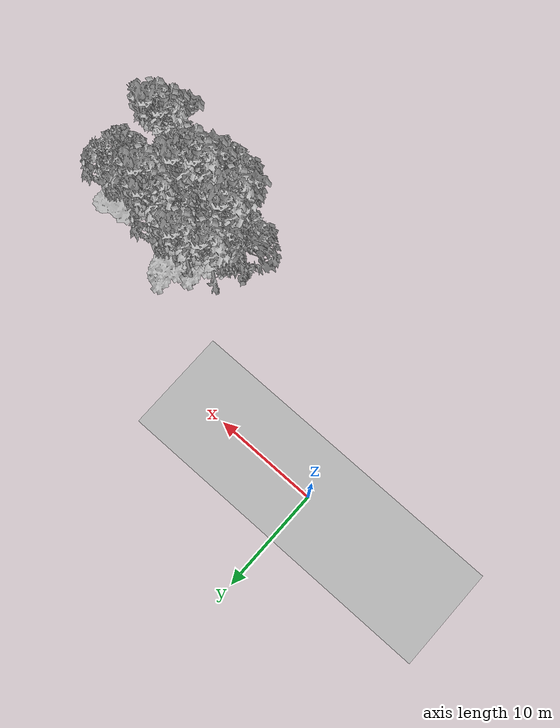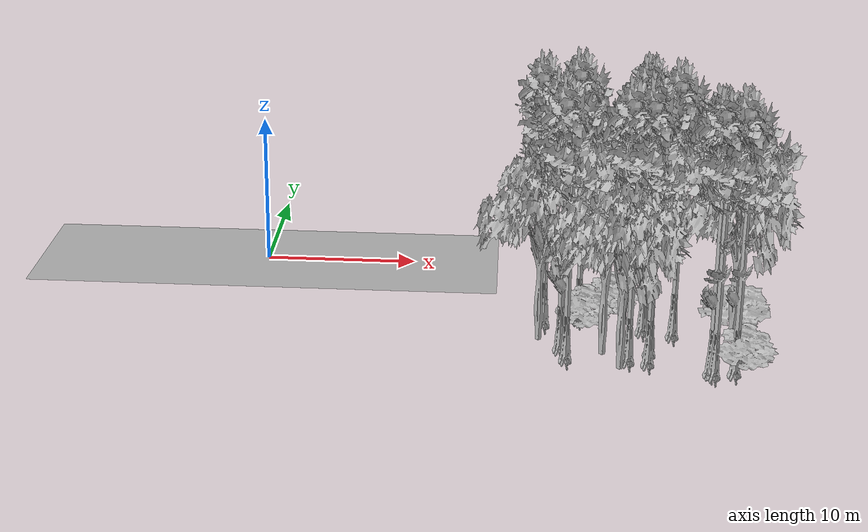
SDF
<sdf version="1.7">
 <world name="default">
  <model name="ground_plane">
   <static>1</static>
   <link name="link">
    <collision name="collision">
     <pose>-50 0 0 0 -0 0</pose>
     <geometry><plane><normal>0 0 1</normal><size>100 100</size></plane></geometry>
     <surface><contact><ode><min_depth>0.01</min_depth><max_vel>0</max_vel></ode></contact></surface>
    </collision>
    <visual name="grass">
     <cast_shadows>0</cast_shadows>
     <geometry>
      <mesh>
       <scale>0.5814285714285714 0.18142857142857144 0.1</scale>
       <uri>file://grass_plane/meshes/grass_plane.dae</uri>
      </mesh>
     </geometry>
    </visual>
   </link>
  </model>
  <model name="Tree 33">
   <static>1</static>
   <pose>23.60385576761722 -8.881119250797658 0 1.57079 -0 0</pose>
   <link name="link">
    <collision name="collision">
     <geometry><mesh><scale>3.5 5 3.5</scale><uri>model://tree_2/meshes/tree_2.obj</uri></mesh></geometry>
    </collision>
    <visual name="visual">
     <geometry><mesh><scale>3.5 5 3.5</scale><uri>model://tree_2/meshes/tree_2.obj</uri></mesh></geometry>
    </visual>
   </link>
  </model>
  <model name="Tree 36">
   <static>1</static>
   <pose>24.85289625353846 -9.240617194932316 0 1.57079 -0 0</pose>
   <link name="link">
    <collision name="collision">
     <geometry><mesh><scale>3.5 5 3.5</scale><uri>model://tree_9/meshes/tree_9.obj</uri></mesh></geometry>
    </collision>
    <visual name="visual">
     <geometry><mesh><scale>3.5 5 3.5</scale><uri>model://tree_9/meshes/tree_9.obj</uri></mesh></geometry>
    </visual>
   </link>
  </model>
  <model name="Tree 42">
   <static>1</static>
   <pose>23.378903669133507 -10.809485848581282 0 1.57079 -0 0</pose>
   <link name="link">
    <collision name="collision">
     <geometry><mesh><scale>3.5 5 3.5</scale><uri>model://tree_2/meshes/tree_2.obj</uri></mesh></geometry>
    </collision>
    <visual name="visual">
     <geometry><mesh><scale>3.5 5 3.5</scale><uri>model://tree_2/meshes/tree_2.obj</uri></mesh></geometry>
    </visual>
   </link>
  </model>
  <model name="Tree 73">
   <static>1</static>
   <pose>30.23339775664448 -9.867062529597614 0 1.57079 -0 0</pose>
   <link name="link">
    <collision name="collision">
     <geometry><mesh><scale>3.5 5 3.5</scale><uri>model://tree_2/meshes/tree_2.obj</uri></mesh></geometry>
    </collision>
    <visual name="visual">
     <geometry><mesh><scale>3.5 5 3.5</scale><uri>model://tree_2/meshes/tree_2.obj</uri></mesh></geometry>
    </visual>
   </link>
  </model>
  <model name="Tree 115">
   <static>1</static>
   <pose>24.93475936643543 -13.649419617174033 0 1.57079 -0 0</pose>
   <link name="link">
    <collision name="collision">
     <geometry><mesh><scale>3.5 5 3.5</scale><uri>model://tree_9/meshes/tree_9.obj</uri></mesh></geometry>
    </collision>
    <visual name="visual">
     <geometry><mesh><scale>3.5 5 3.5</scale><uri>model://tree_9/meshes/tree_9.obj</uri></mesh></geometry>
    </visual>
   </link>
  </model>
  <model name="Tree 121">
   <static>1</static>
   <pose>20.935622033172024 -7.823473786526552 0 1.57079 -0 0</pose>
   <link name="link">
    <collision name="collision">
     <geometry><mesh><scale>3.5 5 3.5</scale><uri>model://tree_9/meshes/tree_9.obj</uri></mesh></geometry>
    </collision>
    <visual name="visual">
     <geometry><mesh><scale>3.5 5 3.5</scale><uri>model://tree_9/meshes/tree_9.obj</uri></mesh></geometry>
    </visual>
   </link>
  </model>
  <model name="Tree 203">
   <static>1</static>
   <pose>29.97658673401817 -14.574164801837673 0 1.57079 -0 0</pose>
   <link name="link">
    <collision name="collision">
     <geometry><mesh><scale>3.5 5 3.5</scale><uri>model://tree_9/meshes/tree_9.obj</uri></mesh></geometry>
    </collision>
    <visual name="visual">
     <geometry><mesh><scale>3.5 5 3.5</scale><uri>model://tree_9/meshes/tree_9.obj</uri></mesh></geometry>
    </visual>
   </link>
  </model>
  <model name="Tree 209">
   <static>1</static>
   <pose>25.084575436205355 -8.654309527403441 0 1.57079 -0 0</pose>
   <link name="link">
    <collision name="collision">
     <geometry><mesh><scale>3.5 5 3.5</scale><uri>model://tree_9/meshes/tree_9.obj</uri></mesh></geometry>
    </collision>
    <visual name="visual">
     <geometry><mesh><scale>3.5 5 3.5</scale><uri>model://tree_9/meshes/tree_9.obj</uri></mesh></geometry>
    </visual>
   </link>
  </model>
  <model name="Tree 212">
   <static>1</static>
   <pose>30.68248000136505 -8.764935694043746 0 1.57079 -0 0</pose>
   <link name="link">
    <collision name="collision">
     <geometry><mesh><scale>3 2 3</scale><uri>model://tree_3/meshes/tree_3.obj</uri></mesh></geometry>
    </collision>
    <visual name="visual">
     <geometry><mesh><scale>3 2 3</scale><uri>model://tree_3/meshes/tree_3.obj</uri></mesh></geometry>
    </visual>
   </link>
  </model>
  <model name="Tree 214">
   <static>1</static>
   <pose>26.702363418403536 -9.742141756353123 0 1.57079 -0 0</pose>
   <link name="link">
    <collision name="collision">
     <geometry><mesh><scale>3.5 5 3.5</scale><uri>model://tree_9/meshes/tree_9.obj</uri></mesh></geometry>
    </collision>
    <visual name="visual">
     <geometry><mesh><scale>3.5 5 3.5</scale><uri>model://tree_9/meshes/tree_9.obj</uri></mesh></geometry>
    </visual>
   </link>
  </model>
  <model name="Tree 236">
   <static>1</static>
   <pose>28.723412349240192 -14.950566258357323 0 1.57079 -0 0</pose>
   <link name="link">
    <collision name="collision">
     <geometry><mesh><scale>3.5 5 3.5</scale><uri>model://tree_9/meshes/tree_9.obj</uri></mesh></geometry>
    </collision>
    <visual name="visual">
     <geometry><mesh><scale>3.5 5 3.5</scale><uri>model://tree_9/meshes/tree_9.obj</uri></mesh></geometry>
    </visual>
   </link>
  </model>
  <model name="Tree 243">
   <static>1</static>
   <pose>22.117728900774452 -13.050198186329446 0 1.57079 -0 0</pose>
   <link name="link">
    <collision name="collision">
     <geometry><mesh><scale>3.5 5 3.5</scale><uri>model://tree_2/meshes/tree_2.obj</uri></mesh></geometry>
    </collision>
    <visual name="visual">
     <geometry><mesh><scale>3.5 5 3.5</scale><uri>model://tree_2/meshes/tree_2.obj</uri></mesh></geometry>
    </visual>
   </link>
  </model>
  <model name="Tree 250">
   <static>1</static>
   <pose>19.66436146819079 -12.058870935932521 0 1.57079 -0 0</pose>
   <link name="link">
    <collision name="collision">
     <geometry><mesh><scale>3.5 5 3.5</scale><uri>model://tree_9/meshes/tree_9.obj</uri></mesh></geometry>
    </collision>
    <visual name="visual">
     <geometry><mesh><scale>3.5 5 3.5</scale><uri>model://tree_9/meshes/tree_9.obj</uri></mesh></geometry>
    </visual>
   </link>
  </model>
  <model name="Tree 255">
   <static>1</static>
   <pose>23.761227437908218 -13.415281007432224 0 1.57079 -0 0</pose>
   <link name="link">
    <collision name="collision">
     <geometry><mesh><scale>3.5 5 3.5</scale><uri>model://tree_9/meshes/tree_9.obj</uri></mesh></geometry>
    </collision>
    <visual name="visual">
     <geometry><mesh><scale>3.5 5 3.5</scale><uri>model://tree_9/meshes/tree_9.obj</uri></mesh></geometry>
    </visual>
   </link>
  </model>
  <model name="Tree 292">
   <static>1</static>
   <pose>22.801143659787613 -7.019829868734707 0 1.57079 -0 0</pose>
   <link name="link">
    <collision name="collision">
     <geometry><mesh><scale>4 2.5 4</scale><uri>model://tree_1/meshes/tree_1.obj</uri></mesh></geometry>
    </collision>
    <visual name="visual">
     <geometry><mesh><scale>4 2.5 4</scale><uri>model://tree_1/meshes/tree_1.obj</uri></mesh></geometry>
    </visual>
   </link>
  </model>
  <model name="Tree 293">
   <static>1</static>
   <pose>20.00445856623226 -13.410027511043552 0 1.57079 -0 0</pose>
   <link name="link">
    <collision name="collision">
     <geometry><mesh><scale>3.5 5 3.5</scale><uri>model://tree_9/meshes/tree_9.obj</uri></mesh></geometry>
    </collision>
    <visual name="visual">
     <geometry><mesh><scale>3.5 5 3.5</scale><uri>model://tree_9/meshes/tree_9.obj</uri></mesh></geometry>
    </visual>
   </link>
  </model>
  <model name="Tree 342">
   <static>1</static>
   <pose>25.101368076572243 -12.351651202880735 0 1.57079 -0 0</pose>
   <link name="link">
    <collision name="collision">
     <geometry><mesh><scale>3.5 5 3.5</scale><uri>model://tree_9/meshes/tree_9.obj</uri></mesh></geometry>
    </collision>
    <visual name="visual">
     <geometry><mesh><scale>3.5 5 3.5</scale><uri>model://tree_9/meshes/tree_9.obj</uri></mesh></geometry>
    </visual>
   </link>
  </model>
  <model name="Tree 405">
   <static>1</static>
   <pose>18.27537029868718 -11.319519105700913 0 1.57079 -0 0</pose>
   <link name="link">
    <collision name="collision">
     <geometry><mesh><scale>3.5 5 3.5</scale><uri>model://tree_2/meshes/tree_2.obj</uri></mesh></geometry>
    </collision>
    <visual name="visual">
     <geometry><mesh><scale>3.5 5 3.5</scale><uri>model://tree_2/meshes/tree_2.obj</uri></mesh></geometry>
    </visual>
   </link>
  </model>
  <model name="Tree 423">
   <static>1</static>
   <pose>21.04938978654218 -9.083327499647293 0 1.57079 -0 0</pose>
   <link name="link">
    <collision name="collision">
     <geometry><mesh><scale>4 2.5 4</scale><uri>model://tree_1/meshes/tree_1.obj</uri></mesh></geometry>
    </collision>
    <visual name="visual">
     <geometry><mesh><scale>4 2.5 4</scale><uri>model://tree_1/meshes/tree_1.obj</uri></mesh></geometry>
    </visual>
   </link>
  </model>
  <model name="Tree 435">
   <static>1</static>
   <pose>28.528935402306686 -14.681046312648265 0 1.57079 -0 0</pose>
   <link name="link">
    <collision name="collision">
     <geometry><mesh><scale>3.5 5 3.5</scale><uri>model://tree_9/meshes/tree_9.obj</uri></mesh></geometry>
    </collision>
    <visual name="visual">
     <geometry><mesh><scale>3.5 5 3.5</scale><uri>model://tree_9/meshes/tree_9.obj</uri></mesh></geometry>
    </visual>
   </link>
  </model>
  <model name="Tree 464">
   <static>1</static>
   <pose>18.72809482990243 -8.626658202874193 0 1.57079 -0 0</pose>
   <link name="link">
    <collision name="collision">
     <geometry><mesh><scale>3.5 5 3.5</scale><uri>model://tree_9/meshes/tree_9.obj</uri></mesh></geometry>
    </collision>
    <visual name="visual">
     <geometry><mesh><scale>3.5 5 3.5</scale><uri>model://tree_9/meshes/tree_9.obj</uri></mesh></geometry>
    </visual>
   </link>
  </model>
  <model name="Tree 517">
   <static>1</static>
   <pose>30.39703719435164 -14.036194546726575 0 1.57079 -0 0</pose>
   <link name="link">
    <collision name="collision">
     <geometry><mesh><scale>4 2.5 4</scale><uri>model://tree_1/meshes/tree_1.obj</uri></mesh></geometry>
    </collision>
    <visual name="visual">
     <geometry><mesh><scale>4 2.5 4</scale><uri>model://tree_1/meshes/tree_1.obj</uri></mesh></geometry>
    </visual>
   </link>
  </model>
  <model name="Tree 529">
   <static>1</static>
   <pose>23.08160164792031 -14.89164543942024 0 1.57079 -0 0</pose>
   <link name="link">
    <collision name="collision">
     <geometry><mesh><scale>3.5 5 3.5</scale><uri>model://tree_2/meshes/tree_2.obj</uri></mesh></geometry>
    </collision>
    <visual name="visual">
     <geometry><mesh><scale>3.5 5 3.5</scale><uri>model://tree_2/meshes/tree_2.obj</uri></mesh></geometry>
    </visual>
   </link>
  </model>
 </world>
</sdf>
